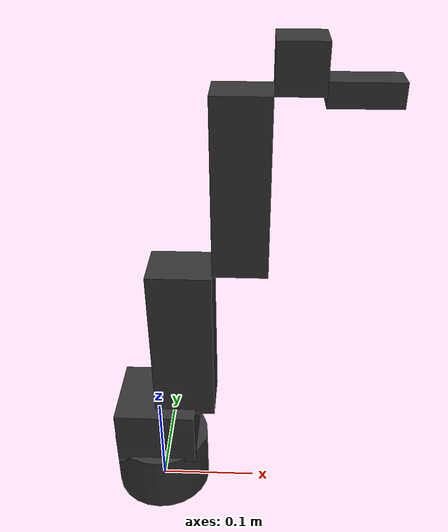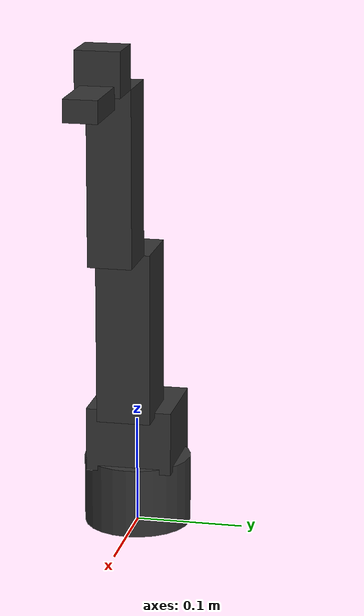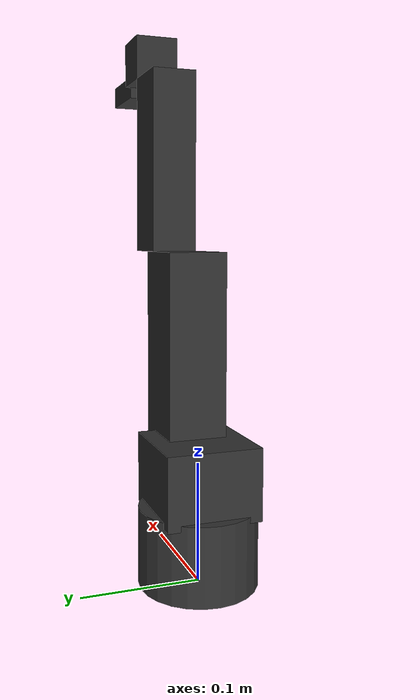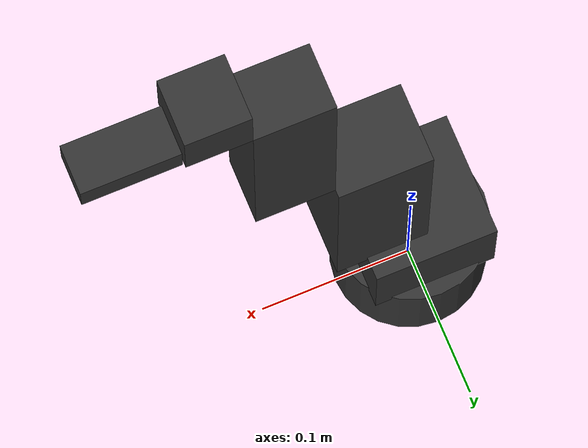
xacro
<?xml version="1.0"?>
<robot name="px150" xmlns:xacro="http://ros.org/wiki/xacro">

  <xacro:arg name="robot_name" default="px150"/>
  <xacro:arg name="use_world_frame" default="false"/>

  <material name="dark_grey">
    <color rgba="0.2 0.2 0.2 1.0"/>
  </material>

  <xacro:if value="$(arg use_world_frame)">
    <link name="world"/>
    <joint name="world_to_base" type="fixed">
      <parent link="world"/>
      <child link="base_link"/>
      <origin xyz="0 0 0" rpy="0 0 0"/>
    </joint>
  </xacro:if>

  <link name="base_link">
    <visual>
      <origin xyz="0 0 0.0325" rpy="0 0 0"/>
      <geometry>
        <cylinder radius="0.05" length="0.065"/>
      </geometry>
      <material name="dark_grey"/>
    </visual>
    <collision>
      <origin xyz="0 0 0.0325" rpy="0 0 0"/>
      <geometry>
        <cylinder radius="0.05" length="0.065"/>
      </geometry>
    </collision>
    <inertial>
      <origin xyz="0 0 0.0325" rpy="0 0 0"/>
      <mass value="0.8"/>
      <inertia ixx="0.001" iyy="0.001" izz="0.001" ixy="0" ixz="0" iyz="0"/>
    </inertial>
  </link>

  <link name="shoulder_link">
    <visual>
      <origin xyz="0 0 0.025" rpy="0 0 0"/>
      <geometry>
        <box size="0.08 0.08 0.06"/>
      </geometry>
      <material name="dark_grey"/>
    </visual>
    <collision>
      <origin xyz="0 0 0.025" rpy="0 0 0"/>
      <geometry>
        <box size="0.08 0.08 0.06"/>
      </geometry>
    </collision>
    <inertial>
      <origin xyz="0 0 0.025" rpy="0 0 0"/>
      <mass value="0.3"/>
      <inertia ixx="0.0005" iyy="0.0005" izz="0.0005" ixy="0" ixz="0" iyz="0"/>
    </inertial>
  </link>

  <joint name="waist" type="revolute">
    <parent link="base_link"/>
    <child link="shoulder_link"/>
    <origin xyz="0 0 0.065" rpy="0 0 0"/>
    <axis xyz="0 0 1"/>
    <limit lower="-3.14159" upper="3.14159" effort="8.0" velocity="3.14159"/>
  </joint>

  <link name="upper_arm_link">
    <visual>
      <origin xyz="0.03 0 0.08" rpy="0 0 0"/>
      <geometry>
        <box size="0.06 0.05 0.16"/>
      </geometry>
      <material name="dark_grey"/>
    </visual>
    <collision>
      <origin xyz="0.03 0 0.08" rpy="0 0 0"/>
      <geometry>
        <box size="0.06 0.05 0.16"/>
      </geometry>
    </collision>
    <inertial>
      <origin xyz="0.03 0 0.08" rpy="0 0 0"/>
      <mass value="0.35"/>
      <inertia ixx="0.0007" iyy="0.0007" izz="0.0007" ixy="0" ixz="0" iyz="0"/>
    </inertial>
  </link>

  <joint name="shoulder" type="revolute">
    <parent link="shoulder_link"/>
    <child link="upper_arm_link"/>
    <origin xyz="0 0 0.05" rpy="0 0 0"/>
    <axis xyz="0 1 0"/>
    <limit lower="-1.97222" upper="1.93733" effort="18.0" velocity="3.14159"/>
  </joint>

  <link name="forearm_link">
    <visual>
      <origin xyz="0.025 0 0.08" rpy="0 0 0"/>
      <geometry>
        <box size="0.05 0.04 0.16"/>
      </geometry>
      <material name="dark_grey"/>
    </visual>
    <collision>
      <origin xyz="0.025 0 0.08" rpy="0 0 0"/>
      <geometry>
        <box size="0.05 0.04 0.16"/>
      </geometry>
    </collision>
    <inertial>
      <origin xyz="0.025 0 0.08" rpy="0 0 0"/>
      <mass value="0.25"/>
      <inertia ixx="0.0005" iyy="0.0005" izz="0.0005" ixy="0" ixz="0" iyz="0"/>
    </inertial>
  </link>

  <joint name="elbow" type="revolute">
    <parent link="upper_arm_link"/>
    <child link="forearm_link"/>
    <origin xyz="0.06 0 0.16" rpy="0 0 0"/>
    <axis xyz="0 1 0"/>
    <limit lower="-2.0944" upper="1.65806" effort="13.0" velocity="3.14159"/>
  </joint>

  <link name="wrist_link">
    <visual>
      <origin xyz="0.02 0 0.02" rpy="0 0 0"/>
      <geometry>
        <box size="0.04 0.04 0.04"/>
      </geometry>
      <material name="dark_grey"/>
    </visual>
    <collision>
      <origin xyz="0.02 0 0.02" rpy="0 0 0"/>
      <geometry>
        <box size="0.04 0.04 0.04"/>
      </geometry>
    </collision>
    <inertial>
      <origin xyz="0.02 0 0.02" rpy="0 0 0"/>
      <mass value="0.09"/>
      <inertia ixx="0.0001" iyy="0.0001" izz="0.0001" ixy="0" ixz="0" iyz="0"/>
    </inertial>
  </link>

  <joint name="wrist_angle" type="revolute">
    <parent link="forearm_link"/>
    <child link="wrist_link"/>
    <origin xyz="0.05 0 0.16" rpy="0 0 0"/>
    <axis xyz="0 1 0"/>
    <limit lower="-1.74533" upper="2.14675" effort="5.0" velocity="3.14159"/>
  </joint>

  <link name="gripper_link">
    <visual>
      <origin xyz="0.03 0 0.0" rpy="0 0 0"/>
      <geometry>
        <box size="0.06 0.03 0.02"/>
      </geometry>
      <material name="dark_grey"/>
    </visual>
    <collision>
      <origin xyz="0.03 0 0.0" rpy="0 0 0"/>
      <geometry>
        <box size="0.06 0.03 0.02"/>
      </geometry>
    </collision>
    <inertial>
      <origin xyz="0.03 0 0.0" rpy="0 0 0"/>
      <mass value="0.05"/>
      <inertia ixx="0.00005" iyy="0.00005" izz="0.00005" ixy="0" ixz="0" iyz="0"/>
    </inertial>
  </link>

  <joint name="wrist_rotate" type="revolute">
    <parent link="wrist_link"/>
    <child link="gripper_link"/>
    <origin xyz="0.04 0 0.0" rpy="0 0 0"/>
    <axis xyz="1 0 0"/>
    <limit lower="-3.14159" upper="3.14159" effort="1.0" velocity="3.14159"/>
  </joint>

  <link name="ee_link">
    <inertial>
      <mass value="0.001"/>
      <inertia ixx="0.0001" iyy="0.0001" izz="0.0001" ixy="0" ixz="0" iyz="0"/>
    </inertial>
  </link>

  <joint name="ee_fixed" type="fixed">
    <parent link="gripper_link"/>
    <child link="ee_link"/>
    <origin xyz="0.06 0 0" rpy="0 0 0"/>
  </joint>

</robot>
